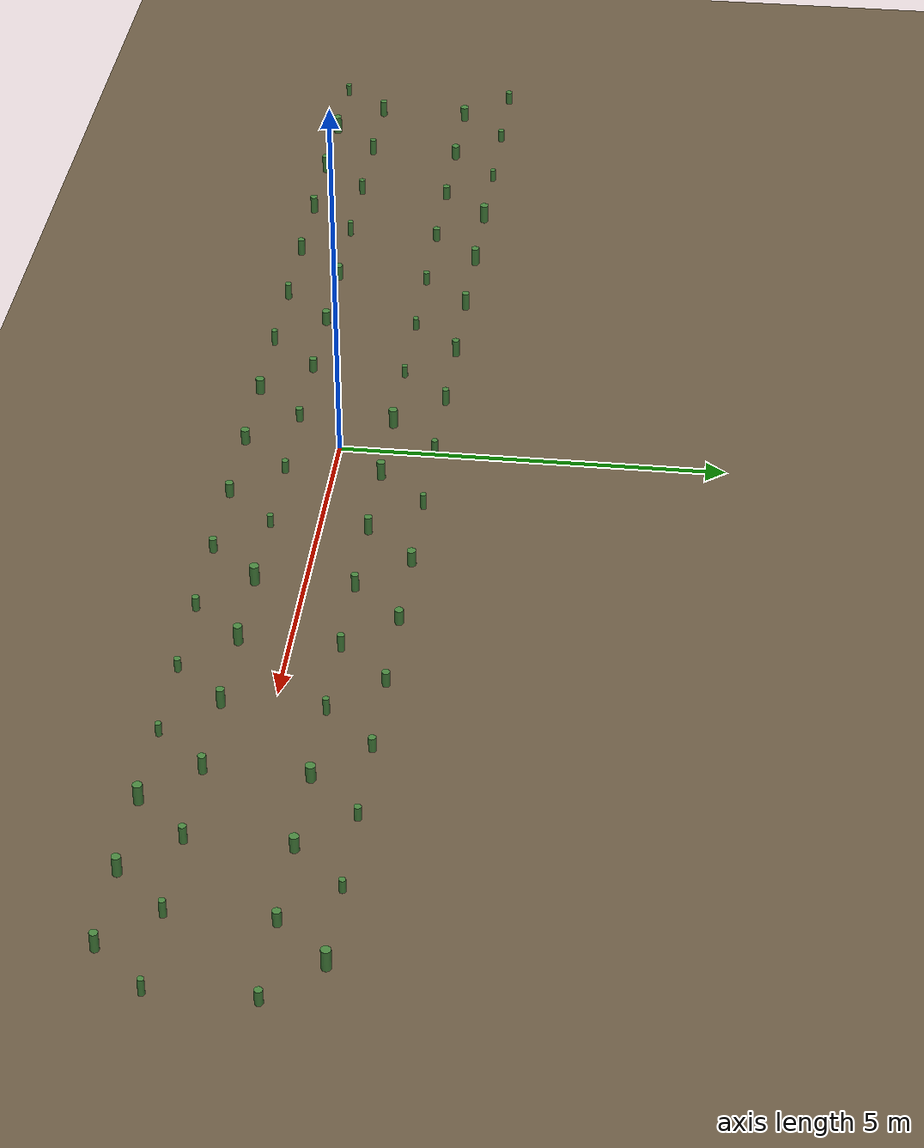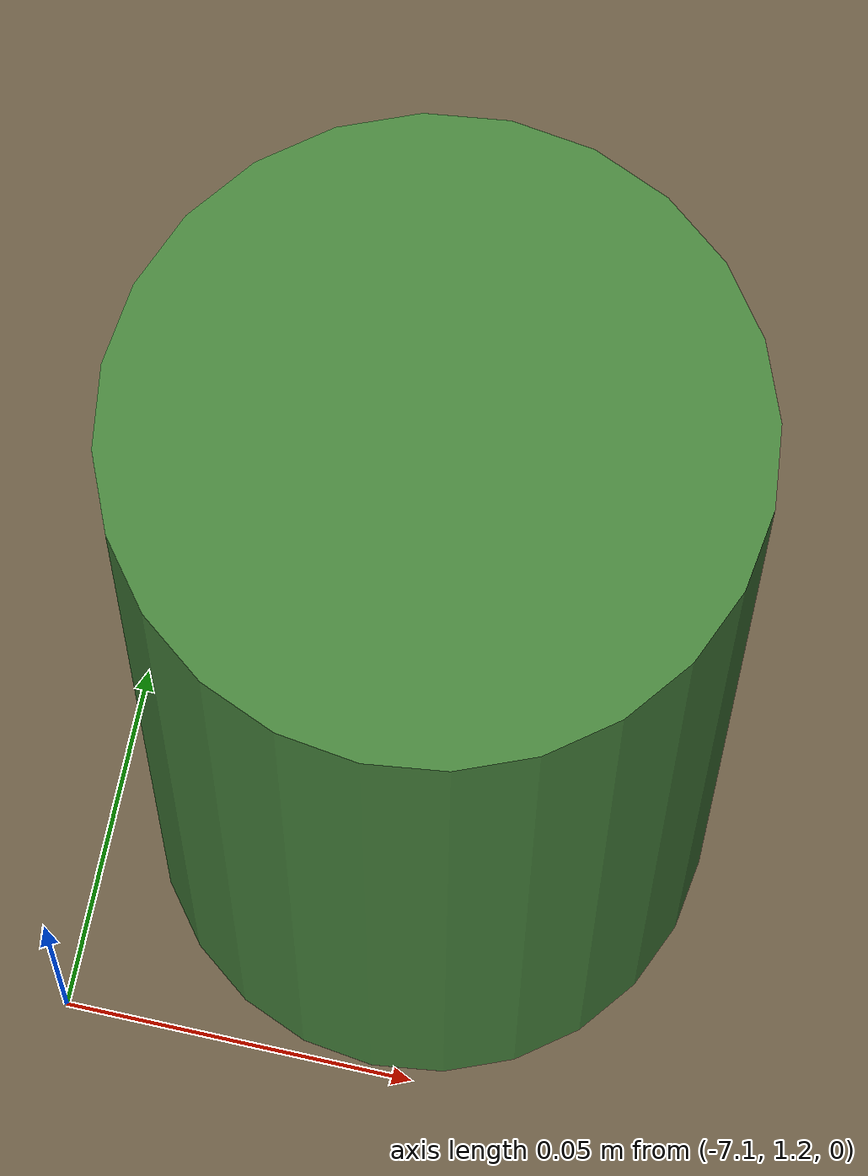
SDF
<?xml version="1.0" ?>
<sdf version="1.6">
  <world name="crop_field">

    <light type="directional" name="sun">
      <cast_shadows>false</cast_shadows><pose>0 0 10 0 0 0</pose>
      <diffuse>0.9 0.88 0.82 1</diffuse><specular>0.25 0.25 0.25 1</specular>
      <attenuation><range>1000</range><constant>0.9</constant>
        <linear>0.01</linear><quadratic>0.001</quadratic></attenuation>
      <direction>-0.4 0.3 -0.9</direction>
    </light>

    <model name="ground_plane"><static>true</static>
      <link name="link">
        <collision name="collision">
          <geometry><plane><normal>0 0 1</normal><size>200 200</size></plane></geometry>
          <surface>
            <friction><ode><mu>1.0</mu><mu2>1.0</mu2></ode></friction>
            <contact><ode><kp>2e5</kp><kd>15</kd></ode></contact>
          </surface>
        </collision>
        <visual name="visual">
          <geometry><plane><normal>0 0 1</normal><size>200 200</size></plane></geometry>
          <material><ambient>0.30 0.26 0.20 1</ambient><diffuse>0.42 0.36 0.27 1</diffuse></material>
        </visual>
      </link>
    </model>

    <model name="crop_0"><static>true</static>
      <pose>-9.408 -1.240 0.085 0 0 0</pose>
      <link name="l"><visual name="v">
        <geometry><cylinder><radius>0.038</radius><length>0.170</length></cylinder></geometry>
        <material><ambient>0.18 0.34 0.16 1</ambient><diffuse>0.28 0.52 0.24 1</diffuse></material>
      </visual></link></model>
    <model name="crop_1"><static>true</static>
      <pose>-8.232 -1.240 0.131 0 0 0</pose>
      <link name="l"><visual name="v">
        <geometry><cylinder><radius>0.057</radius><length>0.263</length></cylinder></geometry>
        <material><ambient>0.18 0.34 0.16 1</ambient><diffuse>0.28 0.52 0.24 1</diffuse></material>
      </visual></link></model>
    <model name="crop_2"><static>true</static>
      <pose>-7.056 -1.240 0.128 0 0 0</pose>
      <link name="l"><visual name="v">
        <geometry><cylinder><radius>0.054</radius><length>0.255</length></cylinder></geometry>
        <material><ambient>0.18 0.34 0.16 1</ambient><diffuse>0.28 0.52 0.24 1</diffuse></material>
      </visual></link></model>
    <model name="crop_3"><static>true</static>
      <pose>-5.880 -1.240 0.124 0 0 0</pose>
      <link name="l"><visual name="v">
        <geometry><cylinder><radius>0.050</radius><length>0.247</length></cylinder></geometry>
        <material><ambient>0.18 0.34 0.16 1</ambient><diffuse>0.28 0.52 0.24 1</diffuse></material>
      </visual></link></model>
    <model name="crop_4"><static>true</static>
      <pose>-4.704 -1.240 0.120 0 0 0</pose>
      <link name="l"><visual name="v">
        <geometry><cylinder><radius>0.047</radius><length>0.240</length></cylinder></geometry>
        <material><ambient>0.18 0.34 0.16 1</ambient><diffuse>0.28 0.52 0.24 1</diffuse></material>
      </visual></link></model>
    <model name="crop_5"><static>true</static>
      <pose>-3.528 -1.240 0.116 0 0 0</pose>
      <link name="l"><visual name="v">
        <geometry><cylinder><radius>0.044</radius><length>0.233</length></cylinder></geometry>
        <material><ambient>0.18 0.34 0.16 1</ambient><diffuse>0.28 0.52 0.24 1</diffuse></material>
      </visual></link></model>
    <model name="crop_6"><static>true</static>
      <pose>-2.352 -1.240 0.113 0 0 0</pose>
      <link name="l"><visual name="v">
        <geometry><cylinder><radius>0.040</radius><length>0.225</length></cylinder></geometry>
        <material><ambient>0.18 0.34 0.16 1</ambient><diffuse>0.28 0.52 0.24 1</diffuse></material>
      </visual></link></model>
    <model name="crop_7"><static>true</static>
      <pose>-1.176 -1.240 0.109 0 0 0</pose>
      <link name="l"><visual name="v">
        <geometry><cylinder><radius>0.059</radius><length>0.218</length></cylinder></geometry>
        <material><ambient>0.18 0.34 0.16 1</ambient><diffuse>0.28 0.52 0.24 1</diffuse></material>
      </visual></link></model>
    <model name="crop_8"><static>true</static>
      <pose>0.000 -1.240 0.105 0 0 0</pose>
      <link name="l"><visual name="v">
        <geometry><cylinder><radius>0.056</radius><length>0.210</length></cylinder></geometry>
        <material><ambient>0.18 0.34 0.16 1</ambient><diffuse>0.28 0.52 0.24 1</diffuse></material>
      </visual></link></model>
    <model name="crop_9"><static>true</static>
      <pose>1.176 -1.240 0.101 0 0 0</pose>
      <link name="l"><visual name="v">
        <geometry><cylinder><radius>0.052</radius><length>0.203</length></cylinder></geometry>
        <material><ambient>0.18 0.34 0.16 1</ambient><diffuse>0.28 0.52 0.24 1</diffuse></material>
      </visual></link></model>
    <model name="crop_10"><static>true</static>
      <pose>2.352 -1.240 0.098 0 0 0</pose>
      <link name="l"><visual name="v">
        <geometry><cylinder><radius>0.049</radius><length>0.195</length></cylinder></geometry>
        <material><ambient>0.18 0.34 0.16 1</ambient><diffuse>0.28 0.52 0.24 1</diffuse></material>
      </visual></link></model>
    <model name="crop_11"><static>true</static>
      <pose>3.528 -1.240 0.094 0 0 0</pose>
      <link name="l"><visual name="v">
        <geometry><cylinder><radius>0.046</radius><length>0.188</length></cylinder></geometry>
        <material><ambient>0.18 0.34 0.16 1</ambient><diffuse>0.28 0.52 0.24 1</diffuse></material>
      </visual></link></model>
    <model name="crop_12"><static>true</static>
      <pose>4.704 -1.240 0.090 0 0 0</pose>
      <link name="l"><visual name="v">
        <geometry><cylinder><radius>0.042</radius><length>0.180</length></cylinder></geometry>
        <material><ambient>0.18 0.34 0.16 1</ambient><diffuse>0.28 0.52 0.24 1</diffuse></material>
      </visual></link></model>
    <model name="crop_13"><static>true</static>
      <pose>5.880 -1.240 0.086 0 0 0</pose>
      <link name="l"><visual name="v">
        <geometry><cylinder><radius>0.039</radius><length>0.173</length></cylinder></geometry>
        <material><ambient>0.18 0.34 0.16 1</ambient><diffuse>0.28 0.52 0.24 1</diffuse></material>
      </visual></link></model>
    <model name="crop_14"><static>true</static>
      <pose>7.056 -1.240 0.133 0 0 0</pose>
      <link name="l"><visual name="v">
        <geometry><cylinder><radius>0.058</radius><length>0.265</length></cylinder></geometry>
        <material><ambient>0.18 0.34 0.16 1</ambient><diffuse>0.28 0.52 0.24 1</diffuse></material>
      </visual></link></model>
    <model name="crop_15"><static>true</static>
      <pose>8.232 -1.240 0.129 0 0 0</pose>
      <link name="l"><visual name="v">
        <geometry><cylinder><radius>0.055</radius><length>0.258</length></cylinder></geometry>
        <material><ambient>0.18 0.34 0.16 1</ambient><diffuse>0.28 0.52 0.24 1</diffuse></material>
      </visual></link></model>
    <model name="crop_16"><static>true</static>
      <pose>9.408 -1.240 0.125 0 0 0</pose>
      <link name="l"><visual name="v">
        <geometry><cylinder><radius>0.051</radius><length>0.250</length></cylinder></geometry>
        <material><ambient>0.18 0.34 0.16 1</ambient><diffuse>0.28 0.52 0.24 1</diffuse></material>
      </visual></link></model>
    <model name="crop_17"><static>true</static>
      <pose>-8.820 -0.620 0.121 0 0 0</pose>
      <link name="l"><visual name="v">
        <geometry><cylinder><radius>0.048</radius><length>0.242</length></cylinder></geometry>
        <material><ambient>0.18 0.34 0.16 1</ambient><diffuse>0.28 0.52 0.24 1</diffuse></material>
      </visual></link></model>
    <model name="crop_18"><static>true</static>
      <pose>-7.644 -0.620 0.118 0 0 0</pose>
      <link name="l"><visual name="v">
        <geometry><cylinder><radius>0.045</radius><length>0.235</length></cylinder></geometry>
        <material><ambient>0.18 0.34 0.16 1</ambient><diffuse>0.28 0.52 0.24 1</diffuse></material>
      </visual></link></model>
    <model name="crop_19"><static>true</static>
      <pose>-6.468 -0.620 0.114 0 0 0</pose>
      <link name="l"><visual name="v">
        <geometry><cylinder><radius>0.041</radius><length>0.228</length></cylinder></geometry>
        <material><ambient>0.18 0.34 0.16 1</ambient><diffuse>0.28 0.52 0.24 1</diffuse></material>
      </visual></link></model>
    <model name="crop_20"><static>true</static>
      <pose>-5.292 -0.620 0.110 0 0 0</pose>
      <link name="l"><visual name="v">
        <geometry><cylinder><radius>0.038</radius><length>0.220</length></cylinder></geometry>
        <material><ambient>0.18 0.34 0.16 1</ambient><diffuse>0.28 0.52 0.24 1</diffuse></material>
      </visual></link></model>
    <model name="crop_21"><static>true</static>
      <pose>-4.116 -0.620 0.106 0 0 0</pose>
      <link name="l"><visual name="v">
        <geometry><cylinder><radius>0.057</radius><length>0.213</length></cylinder></geometry>
        <material><ambient>0.18 0.34 0.16 1</ambient><diffuse>0.28 0.52 0.24 1</diffuse></material>
      </visual></link></model>
    <model name="crop_22"><static>true</static>
      <pose>-2.940 -0.620 0.103 0 0 0</pose>
      <link name="l"><visual name="v">
        <geometry><cylinder><radius>0.054</radius><length>0.205</length></cylinder></geometry>
        <material><ambient>0.18 0.34 0.16 1</ambient><diffuse>0.28 0.52 0.24 1</diffuse></material>
      </visual></link></model>
    <model name="crop_23"><static>true</static>
      <pose>-1.764 -0.620 0.099 0 0 0</pose>
      <link name="l"><visual name="v">
        <geometry><cylinder><radius>0.050</radius><length>0.198</length></cylinder></geometry>
        <material><ambient>0.18 0.34 0.16 1</ambient><diffuse>0.28 0.52 0.24 1</diffuse></material>
      </visual></link></model>
    <model name="crop_24"><static>true</static>
      <pose>-0.588 -0.620 0.095 0 0 0</pose>
      <link name="l"><visual name="v">
        <geometry><cylinder><radius>0.047</radius><length>0.190</length></cylinder></geometry>
        <material><ambient>0.18 0.34 0.16 1</ambient><diffuse>0.28 0.52 0.24 1</diffuse></material>
      </visual></link></model>
    <model name="crop_25"><static>true</static>
      <pose>0.588 -0.620 0.091 0 0 0</pose>
      <link name="l"><visual name="v">
        <geometry><cylinder><radius>0.044</radius><length>0.183</length></cylinder></geometry>
        <material><ambient>0.18 0.34 0.16 1</ambient><diffuse>0.28 0.52 0.24 1</diffuse></material>
      </visual></link></model>
    <model name="crop_26"><static>true</static>
      <pose>1.764 -0.620 0.088 0 0 0</pose>
      <link name="l"><visual name="v">
        <geometry><cylinder><radius>0.040</radius><length>0.175</length></cylinder></geometry>
        <material><ambient>0.18 0.34 0.16 1</ambient><diffuse>0.28 0.52 0.24 1</diffuse></material>
      </visual></link></model>
    <model name="crop_27"><static>true</static>
      <pose>2.940 -0.620 0.134 0 0 0</pose>
      <link name="l"><visual name="v">
        <geometry><cylinder><radius>0.059</radius><length>0.268</length></cylinder></geometry>
        <material><ambient>0.18 0.34 0.16 1</ambient><diffuse>0.28 0.52 0.24 1</diffuse></material>
      </visual></link></model>
    <model name="crop_28"><static>true</static>
      <pose>4.116 -0.620 0.130 0 0 0</pose>
      <link name="l"><visual name="v">
        <geometry><cylinder><radius>0.056</radius><length>0.260</length></cylinder></geometry>
        <material><ambient>0.18 0.34 0.16 1</ambient><diffuse>0.28 0.52 0.24 1</diffuse></material>
      </visual></link></model>
    <model name="crop_29"><static>true</static>
      <pose>5.292 -0.620 0.126 0 0 0</pose>
      <link name="l"><visual name="v">
        <geometry><cylinder><radius>0.052</radius><length>0.253</length></cylinder></geometry>
        <material><ambient>0.18 0.34 0.16 1</ambient><diffuse>0.28 0.52 0.24 1</diffuse></material>
      </visual></link></model>
    <model name="crop_30"><static>true</static>
      <pose>6.468 -0.620 0.122 0 0 0</pose>
      <link name="l"><visual name="v">
        <geometry><cylinder><radius>0.049</radius><length>0.245</length></cylinder></geometry>
        <material><ambient>0.18 0.34 0.16 1</ambient><diffuse>0.28 0.52 0.24 1</diffuse></material>
      </visual></link></model>
    <model name="crop_31"><static>true</static>
      <pose>7.644 -0.620 0.119 0 0 0</pose>
      <link name="l"><visual name="v">
        <geometry><cylinder><radius>0.046</radius><length>0.238</length></cylinder></geometry>
        <material><ambient>0.18 0.34 0.16 1</ambient><diffuse>0.28 0.52 0.24 1</diffuse></material>
      </visual></link></model>
    <model name="crop_32"><static>true</static>
      <pose>8.820 -0.620 0.115 0 0 0</pose>
      <link name="l"><visual name="v">
        <geometry><cylinder><radius>0.042</radius><length>0.230</length></cylinder></geometry>
        <material><ambient>0.18 0.34 0.16 1</ambient><diffuse>0.28 0.52 0.24 1</diffuse></material>
      </visual></link></model>
    <model name="crop_33"><static>true</static>
      <pose>9.996 -0.620 0.111 0 0 0</pose>
      <link name="l"><visual name="v">
        <geometry><cylinder><radius>0.039</radius><length>0.223</length></cylinder></geometry>
        <material><ambient>0.18 0.34 0.16 1</ambient><diffuse>0.28 0.52 0.24 1</diffuse></material>
      </visual></link></model>
    <model name="crop_34"><static>true</static>
      <pose>-8.820 0.620 0.108 0 0 0</pose>
      <link name="l"><visual name="v">
        <geometry><cylinder><radius>0.058</radius><length>0.215</length></cylinder></geometry>
        <material><ambient>0.18 0.34 0.16 1</ambient><diffuse>0.28 0.52 0.24 1</diffuse></material>
      </visual></link></model>
    <model name="crop_35"><static>true</static>
      <pose>-7.644 0.620 0.104 0 0 0</pose>
      <link name="l"><visual name="v">
        <geometry><cylinder><radius>0.055</radius><length>0.208</length></cylinder></geometry>
        <material><ambient>0.18 0.34 0.16 1</ambient><diffuse>0.28 0.52 0.24 1</diffuse></material>
      </visual></link></model>
    <model name="crop_36"><static>true</static>
      <pose>-6.468 0.620 0.100 0 0 0</pose>
      <link name="l"><visual name="v">
        <geometry><cylinder><radius>0.051</radius><length>0.200</length></cylinder></geometry>
        <material><ambient>0.18 0.34 0.16 1</ambient><diffuse>0.28 0.52 0.24 1</diffuse></material>
      </visual></link></model>
    <model name="crop_37"><static>true</static>
      <pose>-5.292 0.620 0.096 0 0 0</pose>
      <link name="l"><visual name="v">
        <geometry><cylinder><radius>0.048</radius><length>0.193</length></cylinder></geometry>
        <material><ambient>0.18 0.34 0.16 1</ambient><diffuse>0.28 0.52 0.24 1</diffuse></material>
      </visual></link></model>
    <model name="crop_38"><static>true</static>
      <pose>-4.116 0.620 0.092 0 0 0</pose>
      <link name="l"><visual name="v">
        <geometry><cylinder><radius>0.045</radius><length>0.185</length></cylinder></geometry>
        <material><ambient>0.18 0.34 0.16 1</ambient><diffuse>0.28 0.52 0.24 1</diffuse></material>
      </visual></link></model>
    <model name="crop_39"><static>true</static>
      <pose>-2.940 0.620 0.089 0 0 0</pose>
      <link name="l"><visual name="v">
        <geometry><cylinder><radius>0.041</radius><length>0.178</length></cylinder></geometry>
        <material><ambient>0.18 0.34 0.16 1</ambient><diffuse>0.28 0.52 0.24 1</diffuse></material>
      </visual></link></model>
    <model name="crop_40"><static>true</static>
      <pose>-1.764 0.620 0.085 0 0 0</pose>
      <link name="l"><visual name="v">
        <geometry><cylinder><radius>0.038</radius><length>0.170</length></cylinder></geometry>
        <material><ambient>0.18 0.34 0.16 1</ambient><diffuse>0.28 0.52 0.24 1</diffuse></material>
      </visual></link></model>
    <model name="crop_41"><static>true</static>
      <pose>-0.588 0.620 0.131 0 0 0</pose>
      <link name="l"><visual name="v">
        <geometry><cylinder><radius>0.057</radius><length>0.263</length></cylinder></geometry>
        <material><ambient>0.18 0.34 0.16 1</ambient><diffuse>0.28 0.52 0.24 1</diffuse></material>
      </visual></link></model>
    <model name="crop_42"><static>true</static>
      <pose>0.588 0.620 0.128 0 0 0</pose>
      <link name="l"><visual name="v">
        <geometry><cylinder><radius>0.054</radius><length>0.255</length></cylinder></geometry>
        <material><ambient>0.18 0.34 0.16 1</ambient><diffuse>0.28 0.52 0.24 1</diffuse></material>
      </visual></link></model>
    <model name="crop_43"><static>true</static>
      <pose>1.764 0.620 0.124 0 0 0</pose>
      <link name="l"><visual name="v">
        <geometry><cylinder><radius>0.050</radius><length>0.247</length></cylinder></geometry>
        <material><ambient>0.18 0.34 0.16 1</ambient><diffuse>0.28 0.52 0.24 1</diffuse></material>
      </visual></link></model>
    <model name="crop_44"><static>true</static>
      <pose>2.940 0.620 0.120 0 0 0</pose>
      <link name="l"><visual name="v">
        <geometry><cylinder><radius>0.047</radius><length>0.240</length></cylinder></geometry>
        <material><ambient>0.18 0.34 0.16 1</ambient><diffuse>0.28 0.52 0.24 1</diffuse></material>
      </visual></link></model>
    <model name="crop_45"><static>true</static>
      <pose>4.116 0.620 0.116 0 0 0</pose>
      <link name="l"><visual name="v">
        <geometry><cylinder><radius>0.044</radius><length>0.233</length></cylinder></geometry>
        <material><ambient>0.18 0.34 0.16 1</ambient><diffuse>0.28 0.52 0.24 1</diffuse></material>
      </visual></link></model>
    <model name="crop_46"><static>true</static>
      <pose>5.292 0.620 0.113 0 0 0</pose>
      <link name="l"><visual name="v">
        <geometry><cylinder><radius>0.040</radius><length>0.225</length></cylinder></geometry>
        <material><ambient>0.18 0.34 0.16 1</ambient><diffuse>0.28 0.52 0.24 1</diffuse></material>
      </visual></link></model>
    <model name="crop_47"><static>true</static>
      <pose>6.468 0.620 0.109 0 0 0</pose>
      <link name="l"><visual name="v">
        <geometry><cylinder><radius>0.059</radius><length>0.218</length></cylinder></geometry>
        <material><ambient>0.18 0.34 0.16 1</ambient><diffuse>0.28 0.52 0.24 1</diffuse></material>
      </visual></link></model>
    <model name="crop_48"><static>true</static>
      <pose>7.644 0.620 0.105 0 0 0</pose>
      <link name="l"><visual name="v">
        <geometry><cylinder><radius>0.056</radius><length>0.210</length></cylinder></geometry>
        <material><ambient>0.18 0.34 0.16 1</ambient><diffuse>0.28 0.52 0.24 1</diffuse></material>
      </visual></link></model>
    <model name="crop_49"><static>true</static>
      <pose>8.820 0.620 0.101 0 0 0</pose>
      <link name="l"><visual name="v">
        <geometry><cylinder><radius>0.052</radius><length>0.203</length></cylinder></geometry>
        <material><ambient>0.18 0.34 0.16 1</ambient><diffuse>0.28 0.52 0.24 1</diffuse></material>
      </visual></link></model>
    <model name="crop_50"><static>true</static>
      <pose>9.996 0.620 0.098 0 0 0</pose>
      <link name="l"><visual name="v">
        <geometry><cylinder><radius>0.049</radius><length>0.195</length></cylinder></geometry>
        <material><ambient>0.18 0.34 0.16 1</ambient><diffuse>0.28 0.52 0.24 1</diffuse></material>
      </visual></link></model>
    <model name="crop_51"><static>true</static>
      <pose>-9.408 1.240 0.094 0 0 0</pose>
      <link name="l"><visual name="v">
        <geometry><cylinder><radius>0.046</radius><length>0.188</length></cylinder></geometry>
        <material><ambient>0.18 0.34 0.16 1</ambient><diffuse>0.28 0.52 0.24 1</diffuse></material>
      </visual></link></model>
    <model name="crop_52"><static>true</static>
      <pose>-8.232 1.240 0.090 0 0 0</pose>
      <link name="l"><visual name="v">
        <geometry><cylinder><radius>0.042</radius><length>0.180</length></cylinder></geometry>
        <material><ambient>0.18 0.34 0.16 1</ambient><diffuse>0.28 0.52 0.24 1</diffuse></material>
      </visual></link></model>
    <model name="crop_53"><static>true</static>
      <pose>-7.056 1.240 0.086 0 0 0</pose>
      <link name="l"><visual name="v">
        <geometry><cylinder><radius>0.039</radius><length>0.173</length></cylinder></geometry>
        <material><ambient>0.18 0.34 0.16 1</ambient><diffuse>0.28 0.52 0.24 1</diffuse></material>
      </visual></link></model>
    <model name="crop_54"><static>true</static>
      <pose>-5.880 1.240 0.133 0 0 0</pose>
      <link name="l"><visual name="v">
        <geometry><cylinder><radius>0.058</radius><length>0.265</length></cylinder></geometry>
        <material><ambient>0.18 0.34 0.16 1</ambient><diffuse>0.28 0.52 0.24 1</diffuse></material>
      </visual></link></model>
    <model name="crop_55"><static>true</static>
      <pose>-4.704 1.240 0.129 0 0 0</pose>
      <link name="l"><visual name="v">
        <geometry><cylinder><radius>0.055</radius><length>0.258</length></cylinder></geometry>
        <material><ambient>0.18 0.34 0.16 1</ambient><diffuse>0.28 0.52 0.24 1</diffuse></material>
      </visual></link></model>
    <model name="crop_56"><static>true</static>
      <pose>-3.528 1.240 0.125 0 0 0</pose>
      <link name="l"><visual name="v">
        <geometry><cylinder><radius>0.051</radius><length>0.250</length></cylinder></geometry>
        <material><ambient>0.18 0.34 0.16 1</ambient><diffuse>0.28 0.52 0.24 1</diffuse></material>
      </visual></link></model>
    <model name="crop_57"><static>true</static>
      <pose>-2.352 1.240 0.121 0 0 0</pose>
      <link name="l"><visual name="v">
        <geometry><cylinder><radius>0.048</radius><length>0.242</length></cylinder></geometry>
        <material><ambient>0.18 0.34 0.16 1</ambient><diffuse>0.28 0.52 0.24 1</diffuse></material>
      </visual></link></model>
    <model name="crop_58"><static>true</static>
      <pose>-1.176 1.240 0.118 0 0 0</pose>
      <link name="l"><visual name="v">
        <geometry><cylinder><radius>0.045</radius><length>0.235</length></cylinder></geometry>
        <material><ambient>0.18 0.34 0.16 1</ambient><diffuse>0.28 0.52 0.24 1</diffuse></material>
      </visual></link></model>
    <model name="crop_59"><static>true</static>
      <pose>0.000 1.240 0.114 0 0 0</pose>
      <link name="l"><visual name="v">
        <geometry><cylinder><radius>0.041</radius><length>0.228</length></cylinder></geometry>
        <material><ambient>0.18 0.34 0.16 1</ambient><diffuse>0.28 0.52 0.24 1</diffuse></material>
      </visual></link></model>
    <model name="crop_60"><static>true</static>
      <pose>1.176 1.240 0.110 0 0 0</pose>
      <link name="l"><visual name="v">
        <geometry><cylinder><radius>0.038</radius><length>0.220</length></cylinder></geometry>
        <material><ambient>0.18 0.34 0.16 1</ambient><diffuse>0.28 0.52 0.24 1</diffuse></material>
      </visual></link></model>
    <model name="crop_61"><static>true</static>
      <pose>2.352 1.240 0.106 0 0 0</pose>
      <link name="l"><visual name="v">
        <geometry><cylinder><radius>0.057</radius><length>0.213</length></cylinder></geometry>
        <material><ambient>0.18 0.34 0.16 1</ambient><diffuse>0.28 0.52 0.24 1</diffuse></material>
      </visual></link></model>
    <model name="crop_62"><static>true</static>
      <pose>3.528 1.240 0.103 0 0 0</pose>
      <link name="l"><visual name="v">
        <geometry><cylinder><radius>0.054</radius><length>0.205</length></cylinder></geometry>
        <material><ambient>0.18 0.34 0.16 1</ambient><diffuse>0.28 0.52 0.24 1</diffuse></material>
      </visual></link></model>
    <model name="crop_63"><static>true</static>
      <pose>4.704 1.240 0.099 0 0 0</pose>
      <link name="l"><visual name="v">
        <geometry><cylinder><radius>0.050</radius><length>0.198</length></cylinder></geometry>
        <material><ambient>0.18 0.34 0.16 1</ambient><diffuse>0.28 0.52 0.24 1</diffuse></material>
      </visual></link></model>
    <model name="crop_64"><static>true</static>
      <pose>5.880 1.240 0.095 0 0 0</pose>
      <link name="l"><visual name="v">
        <geometry><cylinder><radius>0.047</radius><length>0.190</length></cylinder></geometry>
        <material><ambient>0.18 0.34 0.16 1</ambient><diffuse>0.28 0.52 0.24 1</diffuse></material>
      </visual></link></model>
    <model name="crop_65"><static>true</static>
      <pose>7.056 1.240 0.091 0 0 0</pose>
      <link name="l"><visual name="v">
        <geometry><cylinder><radius>0.044</radius><length>0.183</length></cylinder></geometry>
        <material><ambient>0.18 0.34 0.16 1</ambient><diffuse>0.28 0.52 0.24 1</diffuse></material>
      </visual></link></model>
    <model name="crop_66"><static>true</static>
      <pose>8.232 1.240 0.088 0 0 0</pose>
      <link name="l"><visual name="v">
        <geometry><cylinder><radius>0.040</radius><length>0.175</length></cylinder></geometry>
        <material><ambient>0.18 0.34 0.16 1</ambient><diffuse>0.28 0.52 0.24 1</diffuse></material>
      </visual></link></model>
    <model name="crop_67"><static>true</static>
      <pose>9.408 1.240 0.134 0 0 0</pose>
      <link name="l"><visual name="v">
        <geometry><cylinder><radius>0.059</radius><length>0.268</length></cylinder></geometry>
        <material><ambient>0.18 0.34 0.16 1</ambient><diffuse>0.28 0.52 0.24 1</diffuse></material>
      </visual></link></model>

    <physics name="default" type="ode">
      <max_step_size>0.001</max_step_size>
      <real_time_update_rate>1000</real_time_update_rate>
      <ode>
        <solver><type>quick</type><iters>150</iters><sor>1.3</sor></solver>
        <constraints><cfm>0.0</cfm><erp>0.2</erp>
          <contact_max_correcting_vel>50</contact_max_correcting_vel>
          <contact_surface_layer>0.001</contact_surface_layer></constraints>
      </ode>
    </physics>

    <scene><ambient>0.55 0.55 0.55 1</ambient>
      <background>0.55 0.68 0.82 1</background><shadows>false</shadows></scene>

    <gui><camera name="user_camera">
      <pose>-2.520 -0.8 0.55 0 0.22 0.65</pose></camera></gui>
  </world>
</sdf>
